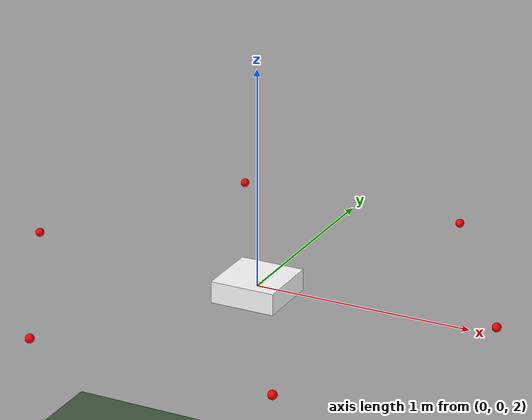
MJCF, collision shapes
<mujoco model="voyager_heavy_lift_hexacopter">
  <compiler angle="radian" meshdir="assets"/>
  <option timestep="0.002" gravity="0 0 -9.81" integrator="RK4"/>
  <visual>
    <global offwidth="960" offheight="540"/>
  </visual>

  <asset>
    <mesh name="hex_body_mesh" file="hexacopter_body.stl" scale="10.0 10.0 10.0"/>
    <texture type="skybox" builtin="gradient" rgb1="0.5 0.7 0.9" rgb2="0.05 0.05 0.1" width="128" height="128"/>
    <texture name="grid" type="2d" builtin="checker" rgb1="0.2 0.3 0.2" rgb2="0.3 0.4 0.3" width="300" height="300"/>
    <material name="grid_mat" texture="grid" texrepeat="8 8" reflectance="0.1"/>
  </asset>

  <worldbody>
    <light directional="true" pos="0 0 10" dir="0 0 -1" diffuse="0.9 0.9 0.9"/>
    <geom name="ground" type="plane" size="50 50 0.1" material="grid_mat"/>

    <body name="hexacopter" pos="0 0 2.0">
      <freejoint name="hex_free"/>
      <inertial pos="0.0 0.0 -0.0521" mass="37.291" diaginertia="5.8965 5.8815 11.139"/>
      <geom name="hex_visual" type="mesh" mesh="hex_body_mesh" rgba="0.85 0.85 0.9 1" contype="0" conaffinity="0"/>
      <geom name="hex_collision" type="box" size="0.15 0.15 0.05" rgba="1 1 1 0" group="3"/>
      <site name="rotor0" pos="1.1200 0.0000 0.04" size="0.02" rgba="1 0 0 1"/>
      <site name="rotor1" pos="0.5600 0.9699 0.04" size="0.02" rgba="1 0 0 1"/>
      <site name="rotor2" pos="-0.5600 0.9699 0.04" size="0.02" rgba="1 0 0 1"/>
      <site name="rotor3" pos="-1.1200 0.0000 0.04" size="0.02" rgba="1 0 0 1"/>
      <site name="rotor4" pos="-0.5600 -0.9699 0.04" size="0.02" rgba="1 0 0 1"/>
      <site name="rotor5" pos="0.5600 -0.9699 0.04" size="0.02" rgba="1 0 0 1"/>
    </body>
  </worldbody>

  <actuator>
    <motor name="rotor0_thrust" site="rotor0" gear="0 0 1 0 0 0.0200" ctrlrange="0 134.14"/>
    <motor name="rotor1_thrust" site="rotor1" gear="0 0 1 0 0 -0.0200" ctrlrange="0 134.14"/>
    <motor name="rotor2_thrust" site="rotor2" gear="0 0 1 0 0 0.0200" ctrlrange="0 134.14"/>
    <motor name="rotor3_thrust" site="rotor3" gear="0 0 1 0 0 -0.0200" ctrlrange="0 134.14"/>
    <motor name="rotor4_thrust" site="rotor4" gear="0 0 1 0 0 0.0200" ctrlrange="0 134.14"/>
    <motor name="rotor5_thrust" site="rotor5" gear="0 0 1 0 0 -0.0200" ctrlrange="0 134.14"/>
  </actuator>

  <sensor>
    <framepos name="hex_pos" objtype="body" objname="hexacopter"/>
    <framequat name="hex_quat" objtype="body" objname="hexacopter"/>
    <framelinvel name="hex_linvel" objtype="body" objname="hexacopter"/>
    <frameangvel name="hex_angvel" objtype="body" objname="hexacopter"/>
  </sensor>
</mujoco>
